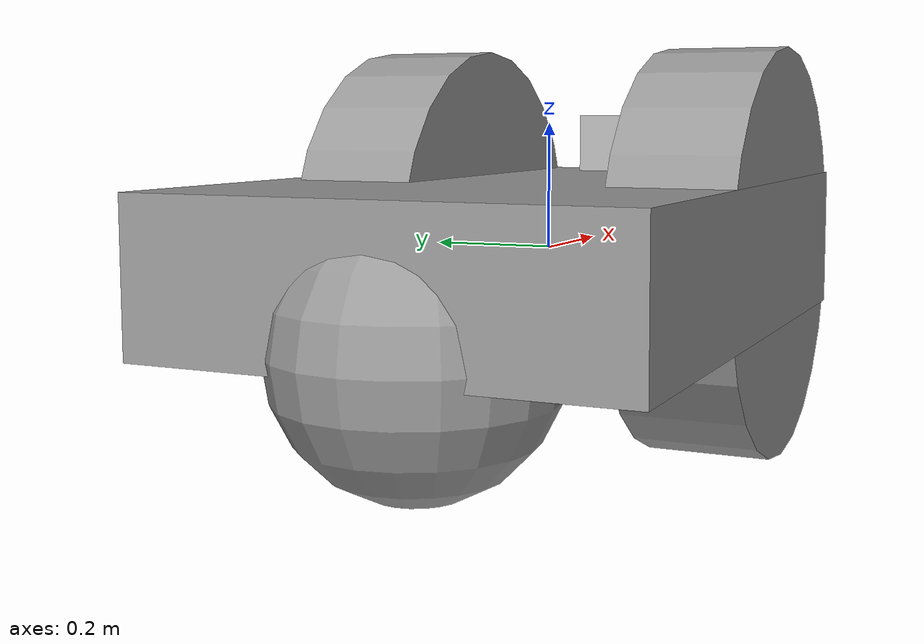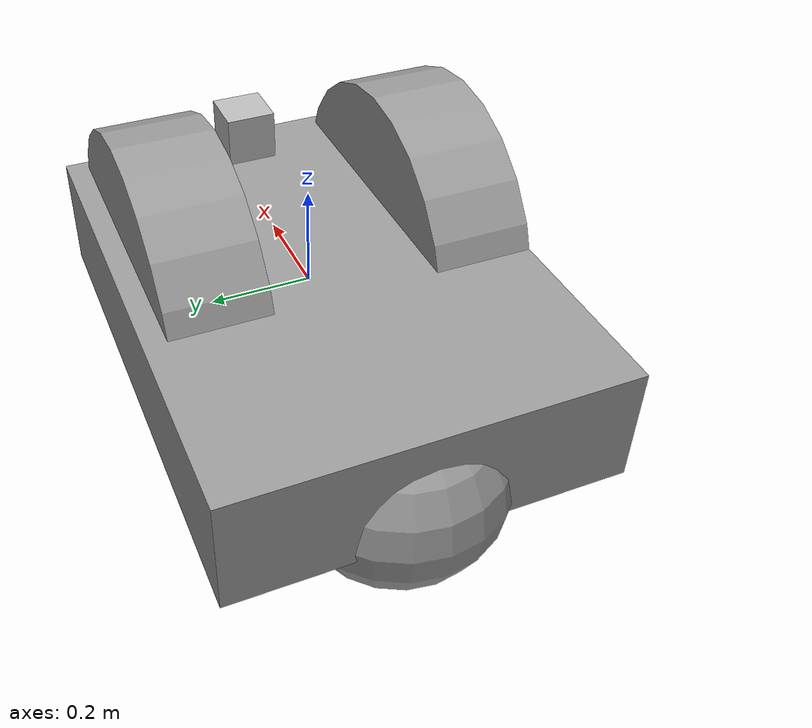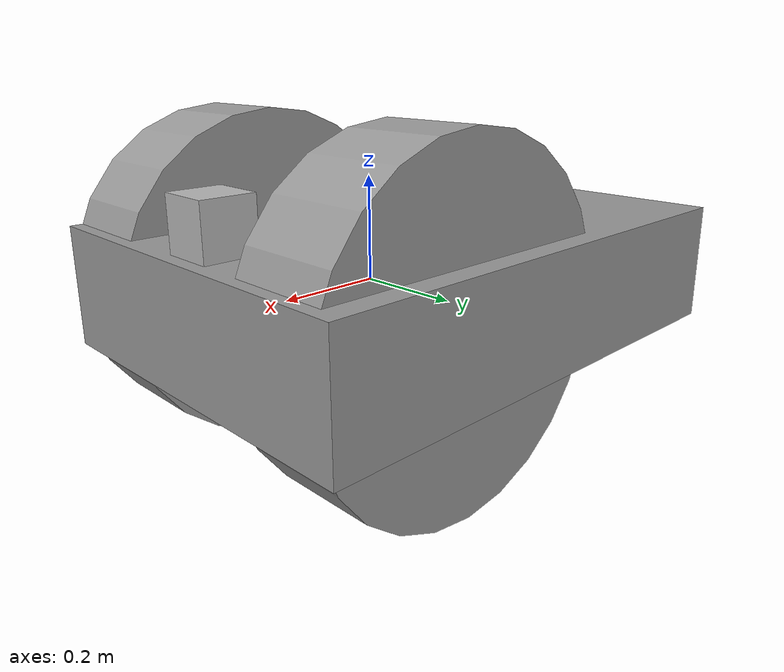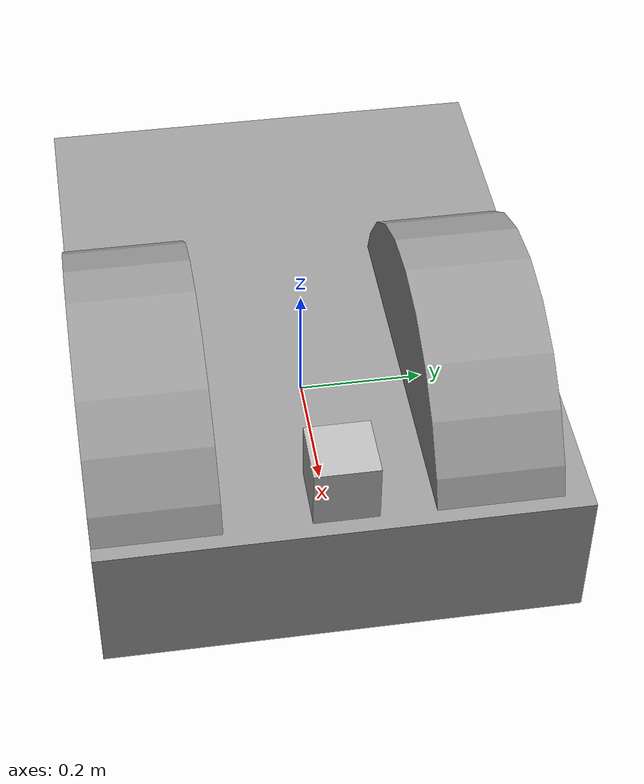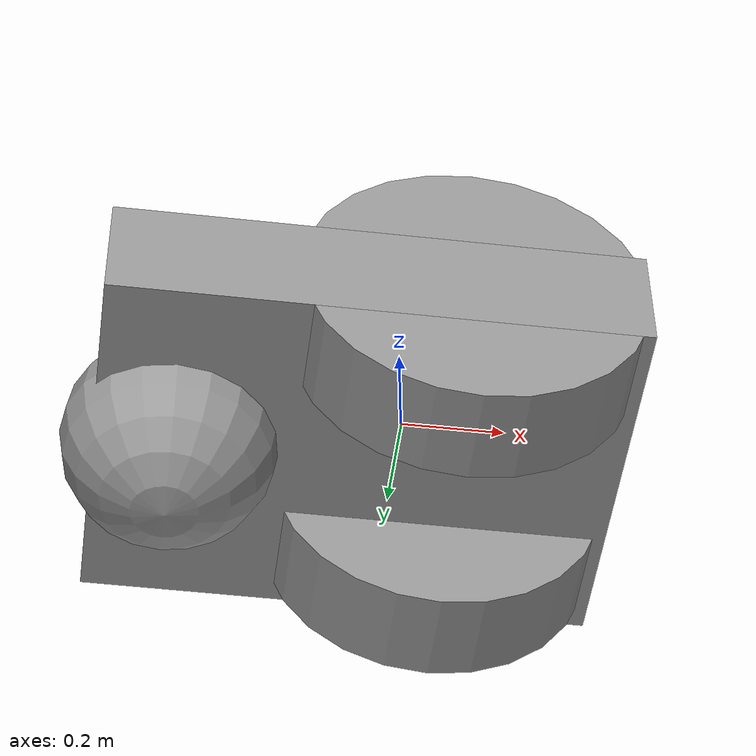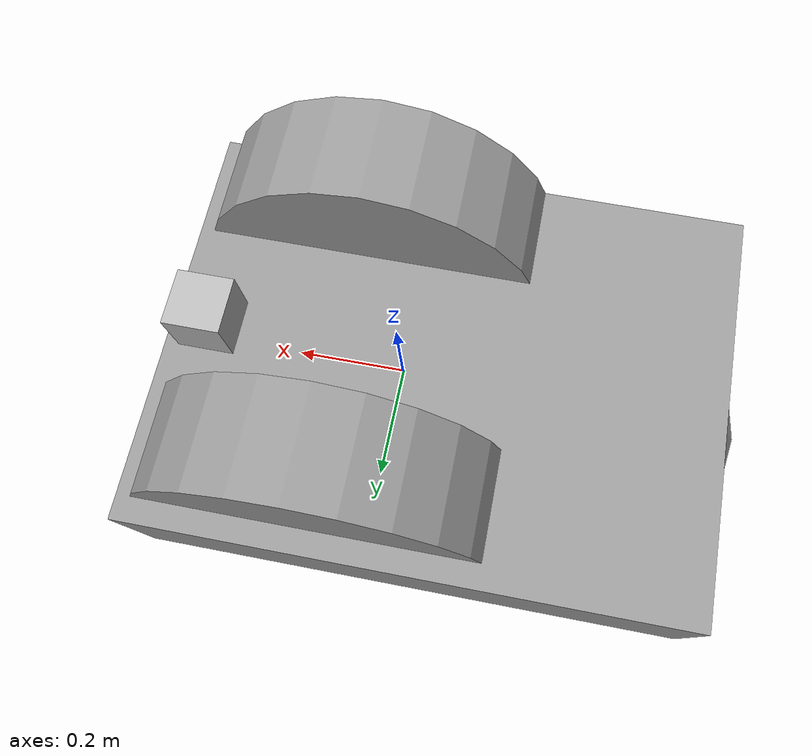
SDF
<?xml version='1.0'?>
<sdf version='1.7'>
  <model name='follower2'>
    <link name='link_2'>
      <inertial>
        <mass>0.173086</mass>
        <inertia>
          <ixx>0.00882136</ixx>
          <ixy>0</ixy>
          <ixz>0</ixz>
          <iyy>0.0151984</iyy>
          <iyz>0</iyz>
          <izz>0.0224706</izz>
        </inertia>
        <pose>0 0 0 0 -0 0</pose>
      </inertial>
      <pose>-0.084498 0.008325 -0.003913 0 -0 0</pose>
      <visual name='visual'>
        <pose>0 0 0 0 -0 0</pose>
        <geometry>
          <box>
            <size>1 0.746915 0.231736</size>
          </box>
        </geometry>
        <material>
          <lighting>1</lighting>
          <script>
            <uri>file://media/materials/scripts/gazebo.material</uri>
            <name>Gazebo/Grey</name>
          </script>
          <shader type='pixel'/>
          <emissive>0 0 0 1</emissive>
        </material>
        <transparency>0</transparency>
        <cast_shadows>1</cast_shadows>
      </visual>
      <collision name='collision'>
        <laser_retro>0</laser_retro>
        <max_contacts>10</max_contacts>
        <pose>0 0 0 0 -0 0</pose>
        <geometry>
          <box>
            <size>1 0.746915 0.231736</size>
          </box>
        </geometry>
        <surface>
          <friction>
            <ode>
              <mu>1</mu>
              <mu2>1</mu2>
              <fdir1>0 0 0</fdir1>
              <slip1>0</slip1>
              <slip2>0</slip2>
            </ode>
            <torsional>
              <coefficient>1</coefficient>
              <patch_radius>0</patch_radius>
              <surface_radius>0</surface_radius>
              <use_patch_radius>1</use_patch_radius>
              <ode>
                <slip>0</slip>
              </ode>
            </torsional>
          </friction>
          <bounce>
            <restitution_coefficient>0</restitution_coefficient>
            <threshold>1e+06</threshold>
          </bounce>
          <contact>
            <collide_without_contact>0</collide_without_contact>
            <collide_without_contact_bitmask>1</collide_without_contact_bitmask>
            <collide_bitmask>1</collide_bitmask>
            <ode>
              <soft_cfm>0</soft_cfm>
              <soft_erp>0.2</soft_erp>
              <kp>1e+13</kp>
              <kd>1</kd>
              <max_vel>0.01</max_vel>
              <min_depth>0</min_depth>
            </ode>
            <bullet>
              <split_impulse>1</split_impulse>
              <split_impulse_penetration_threshold>-0.01</split_impulse_penetration_threshold>
              <soft_cfm>0</soft_cfm>
              <soft_erp>0.2</soft_erp>
              <kp>1e+13</kp>
              <kd>1</kd>
            </bullet>
          </contact>
        </surface>
      </collision>
    </link>
    <link name='link_3'>
      <inertial>
        <mass>0.0808092</mass>
        <inertia>
          <ixx>0.00236692</ixx>
          <ixy>0</ixy>
          <ixz>0</ixz>
          <iyy>0.00236692</iyy>
          <iyz>0</iyz>
          <izz>0.00423248</izz>
        </inertia>
        <pose>0 0 0 0 -0 0</pose>
      </inertial>
      <pose>0.091847 0.241782 -0.003913 -1.5708 0 0</pose>
      <visual name='visual'>
        <pose>0 0 0 0 -0 0</pose>
        <geometry>
          <cylinder>
            <radius>0.323655</radius>
            <length>0.192937</length>
          </cylinder>
        </geometry>
        <material>
          <lighting>1</lighting>
          <script>
            <uri>file://media/materials/scripts/gazebo.material</uri>
            <name>Gazebo/Grey</name>
          </script>
          <shader type='pixel'/>
          <emissive>0 0 0 1</emissive>
        </material>
        <transparency>0</transparency>
        <cast_shadows>1</cast_shadows>
      </visual>
      <collision name='collision'>
        <laser_retro>0</laser_retro>
        <max_contacts>10</max_contacts>
        <pose>0 0 0 0 -0 0</pose>
        <geometry>
          <cylinder>
            <radius>0.323655</radius>
            <length>0.192937</length>
          </cylinder>
        </geometry>
        <surface>
          <friction>
            <ode>
              <mu>1</mu>
              <mu2>1</mu2>
              <fdir1>0 0 0</fdir1>
              <slip1>0</slip1>
              <slip2>0</slip2>
            </ode>
            <torsional>
              <coefficient>1</coefficient>
              <patch_radius>0</patch_radius>
              <surface_radius>0</surface_radius>
              <use_patch_radius>1</use_patch_radius>
              <ode>
                <slip>0</slip>
              </ode>
            </torsional>
          </friction>
          <bounce>
            <restitution_coefficient>0</restitution_coefficient>
            <threshold>1e+06</threshold>
          </bounce>
          <contact>
            <collide_without_contact>0</collide_without_contact>
            <collide_without_contact_bitmask>1</collide_without_contact_bitmask>
            <collide_bitmask>1</collide_bitmask>
            <ode>
              <soft_cfm>0</soft_cfm>
              <soft_erp>0.2</soft_erp>
              <kp>1e+13</kp>
              <kd>1</kd>
              <max_vel>0.01</max_vel>
              <min_depth>0</min_depth>
            </ode>
            <bullet>
              <split_impulse>1</split_impulse>
              <split_impulse_penetration_threshold>-0.01</split_impulse_penetration_threshold>
              <soft_cfm>0</soft_cfm>
              <soft_erp>0.2</soft_erp>
              <kp>1e+13</kp>
              <kd>1</kd>
            </bullet>
          </contact>
        </surface>
      </collision>
    </link>
    <link name='link_3_clone'>
      <inertial>
        <mass>0.0808092</mass>
        <inertia>
          <ixx>0.00236692</ixx>
          <ixy>0</ixy>
          <ixz>0</ixz>
          <iyy>0.00236692</iyy>
          <iyz>0</iyz>
          <izz>0.00423248</izz>
        </inertia>
        <pose>0 0 0 0 -0 0</pose>
      </inertial>
      <pose>0.091847 -0.268663 -0.003913 -1.5708 0 0</pose>
      <visual name='visual'>
        <pose>0 0 0 0 -0 0</pose>
        <geometry>
          <cylinder>
            <radius>0.323655</radius>
            <length>0.192937</length>
          </cylinder>
        </geometry>
        <material>
          <lighting>1</lighting>
          <script>
            <uri>file://media/materials/scripts/gazebo.material</uri>
            <name>Gazebo/Grey</name>
          </script>
          <shader type='pixel'/>
          <emissive>0 0 0 1</emissive>
        </material>
        <transparency>0</transparency>
        <cast_shadows>1</cast_shadows>
      </visual>
      <collision name='collision'>
        <laser_retro>0</laser_retro>
        <max_contacts>10</max_contacts>
        <pose>0 0 0 0 -0 0</pose>
        <geometry>
          <cylinder>
            <radius>0.323655</radius>
            <length>0.192937</length>
          </cylinder>
        </geometry>
        <surface>
          <friction>
            <ode>
              <mu>1</mu>
              <mu2>1</mu2>
              <fdir1>0 0 0</fdir1>
              <slip1>0</slip1>
              <slip2>0</slip2>
            </ode>
            <torsional>
              <coefficient>1</coefficient>
              <patch_radius>0</patch_radius>
              <surface_radius>0</surface_radius>
              <use_patch_radius>1</use_patch_radius>
              <ode>
                <slip>0</slip>
              </ode>
            </torsional>
          </friction>
          <bounce>
            <restitution_coefficient>0</restitution_coefficient>
            <threshold>1e+06</threshold>
          </bounce>
          <contact>
            <collide_without_contact>0</collide_without_contact>
            <collide_without_contact_bitmask>1</collide_without_contact_bitmask>
            <collide_bitmask>1</collide_bitmask>
            <ode>
              <soft_cfm>0</soft_cfm>
              <soft_erp>0.2</soft_erp>
              <kp>1e+13</kp>
              <kd>1</kd>
              <max_vel>0.01</max_vel>
              <min_depth>0</min_depth>
            </ode>
            <bullet>
              <split_impulse>1</split_impulse>
              <split_impulse_penetration_threshold>-0.01</split_impulse_penetration_threshold>
              <soft_cfm>0</soft_cfm>
              <soft_erp>0.2</soft_erp>
              <kp>1e+13</kp>
              <kd>1</kd>
            </bullet>
          </contact>
        </surface>
      </collision>
    </link>
    <link name='link_4'>
      <inertial>
        <mass>0.0711856</mass>
        <inertia>
          <ixx>0.00122279</ixx>
          <ixy>0</ixy>
          <ixz>0</ixz>
          <iyy>0.00122279</iyy>
          <iyz>0</iyz>
          <izz>0.00122279</izz>
        </inertia>
        <pose>0 0 0 0 -0 0</pose>
      </inertial>
      <pose>-0.439339 0.008325 -0.100464 0 -0 0</pose>
      <visual name='visual'>
        <pose>0 0 0 0 -0 0</pose>
        <geometry>
          <sphere>
            <radius>0.207229</radius>
          </sphere>
        </geometry>
        <material>
          <lighting>1</lighting>
          <script>
            <uri>file://media/materials/scripts/gazebo.material</uri>
            <name>Gazebo/Grey</name>
          </script>
          <shader type='pixel'/>
          <emissive>0 0 0 1</emissive>
        </material>
        <transparency>0</transparency>
        <cast_shadows>1</cast_shadows>
      </visual>
      <collision name='collision'>
        <laser_retro>0</laser_retro>
        <max_contacts>10</max_contacts>
        <pose>0 0 0 0 -0 0</pose>
        <geometry>
          <sphere>
            <radius>0.207229</radius>
          </sphere>
        </geometry>
        <surface>
          <friction>
            <ode>
              <mu>1</mu>
              <mu2>1</mu2>
              <fdir1>0 0 0</fdir1>
              <slip1>0</slip1>
              <slip2>0</slip2>
            </ode>
            <torsional>
              <coefficient>1</coefficient>
              <patch_radius>0</patch_radius>
              <surface_radius>0</surface_radius>
              <use_patch_radius>1</use_patch_radius>
              <ode>
                <slip>0</slip>
              </ode>
            </torsional>
          </friction>
          <bounce>
            <restitution_coefficient>0</restitution_coefficient>
            <threshold>1e+06</threshold>
          </bounce>
          <contact>
            <collide_without_contact>0</collide_without_contact>
            <collide_without_contact_bitmask>1</collide_without_contact_bitmask>
            <collide_bitmask>1</collide_bitmask>
            <ode>
              <soft_cfm>0</soft_cfm>
              <soft_erp>0.2</soft_erp>
              <kp>1e+13</kp>
              <kd>1</kd>
              <max_vel>0.01</max_vel>
              <min_depth>0</min_depth>
            </ode>
            <bullet>
              <split_impulse>1</split_impulse>
              <split_impulse_penetration_threshold>-0.01</split_impulse_penetration_threshold>
              <soft_cfm>0</soft_cfm>
              <soft_erp>0.2</soft_erp>
              <kp>1e+13</kp>
              <kd>1</kd>
            </bullet>
          </contact>
        </surface>
      </collision>
    </link>
    <model name='depth_camera'>
      <link name='link'>
        <pose>0 0 0.05 0 -0 0</pose>
        <inertial>
          <mass>0.1</mass>
          <inertia>
            <ixx>0.000166667</ixx>
            <iyy>0.000166667</iyy>
            <izz>0.000166667</izz>
            <ixy>0</ixy>
            <ixz>0</ixz>
            <iyz>0</iyz>
          </inertia>
        </inertial>
        <collision name='collision'>
          <geometry>
            <box>
              <size>0.1 0.1 0.1</size>
            </box>
          </geometry>
        </collision>
        <visual name='visual'>
          <geometry>
            <box>
              <size>0.1 0.1 0.1</size>
            </box>
          </geometry>
        </visual>
        <sensor name='camera' type='depth'>
          <camera>
            <horizontal_fov>1.047</horizontal_fov>
            <image>
              <width>320</width>
              <height>240</height>
            </image>
            <clip>
              <near>0.1</near>
              <far>100</far>
            </clip>
          </camera>
          <always_on>1</always_on>
          <update_rate>30</update_rate>
          <visualize>1</visualize>
        </sensor>
      </link>
      <pose>0.340142 0.010233 0.112203 0 -0 0</pose>
    </model>
    <joint name='link_2_JOINT_4' type='revolute'>
      <parent>link_2</parent>
      <child>link_3</child>
      <pose>0 0 0 0 -0 0</pose>
      <axis>
        <xyz>0 0 1</xyz>
        <limit>
          <lower>-1.79769e+308</lower>
          <upper>1.79769e+308</upper>
          <effort>-1</effort>
          <velocity>-1</velocity>
        </limit>
        <dynamics>
          <spring_reference>0</spring_reference>
          <spring_stiffness>0</spring_stiffness>
          <damping>0</damping>
        </dynamics>
      </axis>
      <physics>
        <ode>
          <limit>
            <cfm>0</cfm>
            <erp>0.2</erp>
          </limit>
          <suspension>
            <cfm>0</cfm>
            <erp>0.2</erp>
          </suspension>
        </ode>
      </physics>
    </joint>
    <joint name='link_2_JOINT_5' type='revolute'>
      <parent>link_2</parent>
      <child>link_3_clone</child>
      <pose>0 0 0 0 -0 0</pose>
      <axis>
        <xyz>0 0 1</xyz>
        <limit>
          <lower>-1.79769e+308</lower>
          <upper>1.79769e+308</upper>
          <effort>-1</effort>
          <velocity>-1</velocity>
        </limit>
        <dynamics>
          <spring_reference>0</spring_reference>
          <spring_stiffness>0</spring_stiffness>
          <damping>0</damping>
        </dynamics>
      </axis>
      <physics>
        <ode>
          <limit>
            <cfm>0</cfm>
            <erp>0.2</erp>
          </limit>
          <suspension>
            <cfm>0</cfm>
            <erp>0.2</erp>
          </suspension>
        </ode>
      </physics>
    </joint>
    <joint name='link_2_JOINT_6' type='ball'>
      <parent>link_2</parent>
      <child>link_4</child>
      <pose>0 0 0 0 -0.02 0</pose>
      <physics>
        <ode>
          <limit>
            <cfm>0</cfm>
            <erp>0.2</erp>
          </limit>
          <suspension>
            <cfm>0</cfm>
            <erp>0.2</erp>
          </suspension>
        </ode>
      </physics>
    </joint>
    <joint name='link_2_JOINT_7' type='fixed'>
      <parent>link_2</parent>
      <child>depth_camera::link</child>
      <pose>0 0 0 -0.07 0 0</pose>
      <physics>
        <ode>
          <limit>
            <cfm>0</cfm>
            <erp>0.2</erp>
          </limit>
          <suspension>
            <cfm>0</cfm>
            <erp>0.2</erp>
          </suspension>
        </ode>
      </physics>
    </joint>
    <static>0</static>
    <allow_auto_disable>1</allow_auto_disable>
    <plugin name='follower2' filename='libFollowerPlugin.so'/>
  </model>
</sdf>
